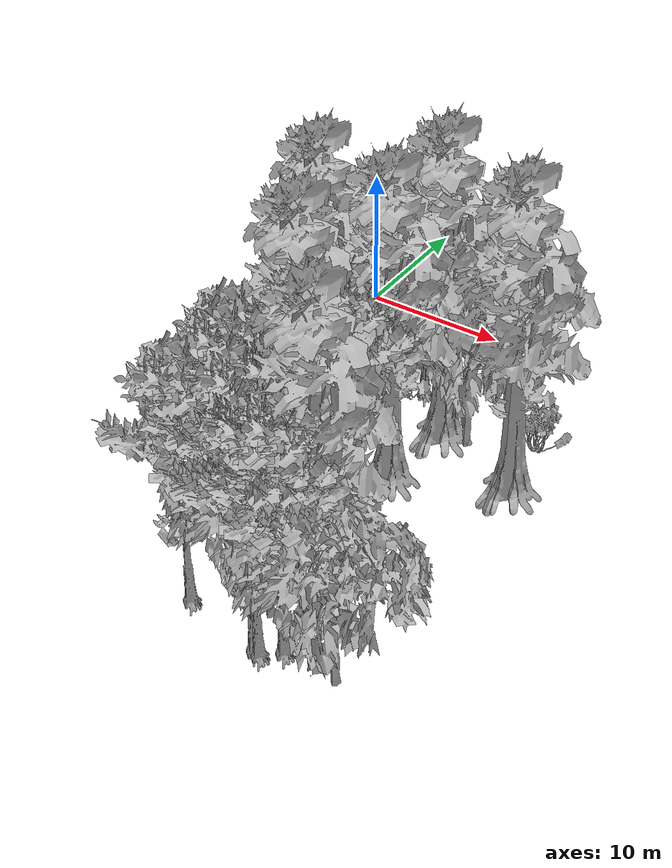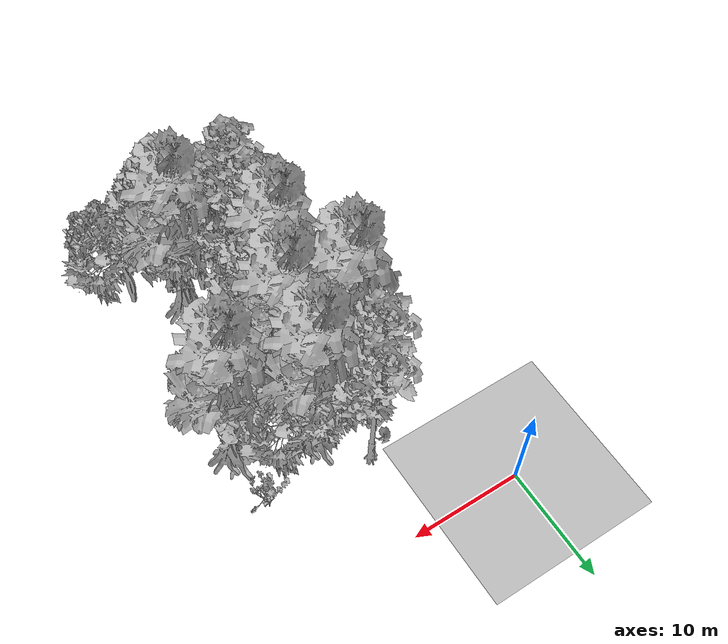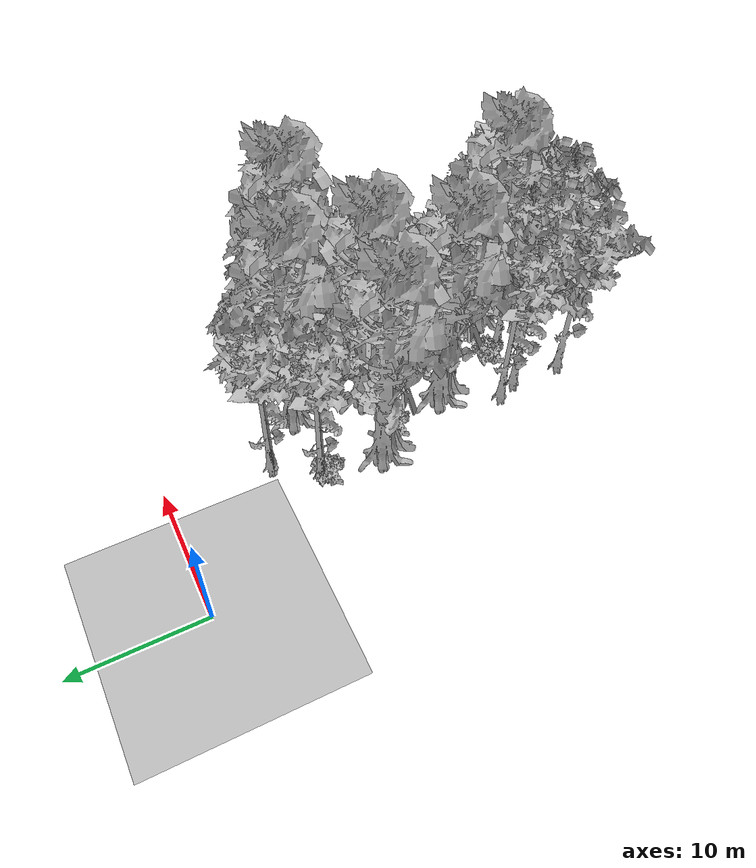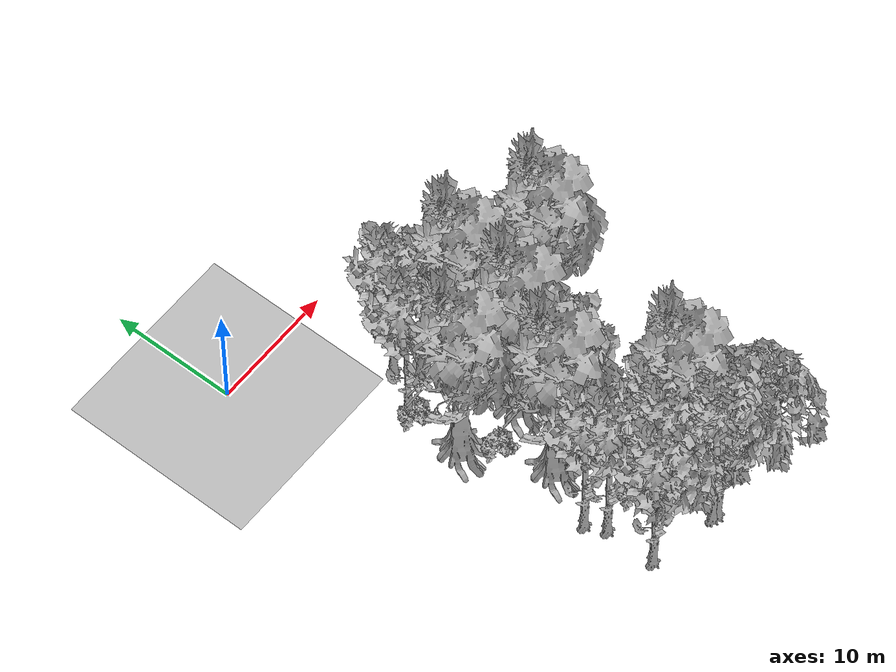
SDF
<sdf version="1.7">
 <world name="default">
  <model name="ground_plane">
   <static>1</static>
   <link name="link">
    <collision name="collision">
     <geometry><plane><normal>0 0 1</normal><size>70 70</size></plane></geometry>
     <surface><contact><ode><min_depth>0.01</min_depth><max_vel>0</max_vel></ode></contact></surface>
    </collision>
    <visual name="grass">
     <cast_shadows>0</cast_shadows>
     <geometry>
      <mesh>
       <scale>0.29000000000000004 0.29000000000000004 0.1</scale>
       <uri>file://grass_plane/meshes/grass_plane.dae</uri>
      </mesh>
     </geometry>
    </visual>
   </link>
  </model>
  <model name="Tree 6">
   <static>1</static>
   <pose>6.516080398578872 -15.849779528134338 0 1.57079 -0 0</pose>
   <link name="link">
    <collision name="collision">
     <geometry><mesh><scale>5 5 5</scale><uri>model://tree_4/meshes/tree_4.obj</uri></mesh></geometry>
    </collision>
    <visual name="visual">
     <geometry><mesh><scale>5 5 5</scale><uri>model://tree_4/meshes/tree_4.obj</uri></mesh></geometry>
    </visual>
   </link>
  </model>
  <model name="Tree 13">
   <static>1</static>
   <pose>18.613345052840224 -13.734592819964092 0 1.57079 -0 0</pose>
   <link name="link">
    <collision name="collision">
     <geometry><mesh><scale>5 5 5</scale><uri>model://tree_4/meshes/tree_4.obj</uri></mesh></geometry>
    </collision>
    <visual name="visual">
     <geometry><mesh><scale>5 5 5</scale><uri>model://tree_4/meshes/tree_4.obj</uri></mesh></geometry>
    </visual>
   </link>
  </model>
  <model name="Tree 21">
   <static>1</static>
   <pose>11.75320115348866 -16.734784934001564 0 1.57079 -0 0</pose>
   <link name="link">
    <collision name="collision">
     <geometry><mesh><scale>5 5 5</scale><uri>model://tree_4/meshes/tree_4.obj</uri></mesh></geometry>
    </collision>
    <visual name="visual">
     <geometry><mesh><scale>5 5 5</scale><uri>model://tree_4/meshes/tree_4.obj</uri></mesh></geometry>
    </visual>
   </link>
  </model>
  <model name="Tree 38">
   <static>1</static>
   <pose>13.919543447401544 -11.121491674539822 0 1.57079 -0 0</pose>
   <link name="link">
    <collision name="collision">
     <geometry><mesh><scale>5 5 5</scale><uri>model://tree_2/meshes/tree_2.obj</uri></mesh></geometry>
    </collision>
    <visual name="visual">
     <geometry><mesh><scale>5 5 5</scale><uri>model://tree_2/meshes/tree_2.obj</uri></mesh></geometry>
    </visual>
   </link>
  </model>
  <model name="Tree 43">
   <static>1</static>
   <pose>11.094405309211496 -30.09868720719511 0 1.57079 -0 0</pose>
   <link name="link">
    <collision name="collision">
     <geometry><mesh><scale>5 5 5</scale><uri>model://tree_9/meshes/tree_9.obj</uri></mesh></geometry>
    </collision>
    <visual name="visual">
     <geometry><mesh><scale>5 5 5</scale><uri>model://tree_9/meshes/tree_9.obj</uri></mesh></geometry>
    </visual>
   </link>
  </model>
  <model name="Tree 46">
   <static>1</static>
   <pose>14.748652098251696 -28.53026323483974 0 1.57079 -0 0</pose>
   <link name="link">
    <collision name="collision">
     <geometry><mesh><scale>5 5 5</scale><uri>model://tree_4/meshes/tree_4.obj</uri></mesh></geometry>
    </collision>
    <visual name="visual">
     <geometry><mesh><scale>5 5 5</scale><uri>model://tree_4/meshes/tree_4.obj</uri></mesh></geometry>
    </visual>
   </link>
  </model>
  <model name="Tree 73">
   <static>1</static>
   <pose>14.797706604875557 -32.02522684831839 0 1.57079 -0 0</pose>
   <link name="link">
    <collision name="collision">
     <geometry><mesh><scale>5 5 5</scale><uri>model://tree_9/meshes/tree_9.obj</uri></mesh></geometry>
    </collision>
    <visual name="visual">
     <geometry><mesh><scale>5 5 5</scale><uri>model://tree_9/meshes/tree_9.obj</uri></mesh></geometry>
    </visual>
   </link>
  </model>
  <model name="Tree 75">
   <static>1</static>
   <pose>9.31633322644317 -21.98857009264615 0 1.57079 -0 0</pose>
   <link name="link">
    <collision name="collision">
     <geometry><mesh><scale>5 5 5</scale><uri>model://tree_4/meshes/tree_4.obj</uri></mesh></geometry>
    </collision>
    <visual name="visual">
     <geometry><mesh><scale>5 5 5</scale><uri>model://tree_4/meshes/tree_4.obj</uri></mesh></geometry>
    </visual>
   </link>
  </model>
  <model name="Tree 83">
   <static>1</static>
   <pose>18.242586362476032 -32.345502292053254 0 1.57079 -0 0</pose>
   <link name="link">
    <collision name="collision">
     <geometry><mesh><scale>5 5 5</scale><uri>model://tree_2/meshes/tree_2.obj</uri></mesh></geometry>
    </collision>
    <visual name="visual">
     <geometry><mesh><scale>5 5 5</scale><uri>model://tree_2/meshes/tree_2.obj</uri></mesh></geometry>
    </visual>
   </link>
  </model>
  <model name="Tree 102">
   <static>1</static>
   <pose>8.073607944637565 -27.65518818909799 0 1.57079 -0 0</pose>
   <link name="link">
    <collision name="collision">
     <geometry><mesh><scale>5 5 5</scale><uri>model://tree_9/meshes/tree_9.obj</uri></mesh></geometry>
    </collision>
    <visual name="visual">
     <geometry><mesh><scale>5 5 5</scale><uri>model://tree_9/meshes/tree_9.obj</uri></mesh></geometry>
    </visual>
   </link>
  </model>
  <model name="Tree 116">
   <static>1</static>
   <pose>12.312174910938275 -11.333755657992711 0 1.57079 -0 0</pose>
   <link name="link">
    <collision name="collision">
     <geometry><mesh><scale>5 5 5</scale><uri>model://tree_4/meshes/tree_4.obj</uri></mesh></geometry>
    </collision>
    <visual name="visual">
     <geometry><mesh><scale>5 5 5</scale><uri>model://tree_4/meshes/tree_4.obj</uri></mesh></geometry>
    </visual>
   </link>
  </model>
  <model name="Tree 131">
   <static>1</static>
   <pose>8.04622105235454 -31.65103088711838 0 1.57079 -0 0</pose>
   <link name="link">
    <collision name="collision">
     <geometry><mesh><scale>5 5 5</scale><uri>model://tree_9/meshes/tree_9.obj</uri></mesh></geometry>
    </collision>
    <visual name="visual">
     <geometry><mesh><scale>5 5 5</scale><uri>model://tree_9/meshes/tree_9.obj</uri></mesh></geometry>
    </visual>
   </link>
  </model>
  <model name="Tree 138">
   <static>1</static>
   <pose>12.37979315244798 -30.186776260816075 0 1.57079 -0 0</pose>
   <link name="link">
    <collision name="collision">
     <geometry><mesh><scale>5 5 5</scale><uri>model://tree_2/meshes/tree_2.obj</uri></mesh></geometry>
    </collision>
    <visual name="visual">
     <geometry><mesh><scale>5 5 5</scale><uri>model://tree_2/meshes/tree_2.obj</uri></mesh></geometry>
    </visual>
   </link>
  </model>
  <model name="Tree 151">
   <static>1</static>
   <pose>11.9825903180841 -20.489643360568692 0 1.57079 -0 0</pose>
   <link name="link">
    <collision name="collision">
     <geometry><mesh><scale>5 5 5</scale><uri>model://tree_9/meshes/tree_9.obj</uri></mesh></geometry>
    </collision>
    <visual name="visual">
     <geometry><mesh><scale>5 5 5</scale><uri>model://tree_9/meshes/tree_9.obj</uri></mesh></geometry>
    </visual>
   </link>
  </model>
  <model name="Tree 179">
   <static>1</static>
   <pose>6.849941838956461 -10.894429777289819 0 1.57079 -0 0</pose>
   <link name="link">
    <collision name="collision">
     <geometry><mesh><scale>5 5 5</scale><uri>model://tree_9/meshes/tree_9.obj</uri></mesh></geometry>
    </collision>
    <visual name="visual">
     <geometry><mesh><scale>5 5 5</scale><uri>model://tree_9/meshes/tree_9.obj</uri></mesh></geometry>
    </visual>
   </link>
  </model>
  <model name="Tree 183">
   <static>1</static>
   <pose>13.352399016805073 -32.77176645445738 0 1.57079 -0 0</pose>
   <link name="link">
    <collision name="collision">
     <geometry><mesh><scale>5 5 5</scale><uri>model://tree_9/meshes/tree_9.obj</uri></mesh></geometry>
    </collision>
    <visual name="visual">
     <geometry><mesh><scale>5 5 5</scale><uri>model://tree_9/meshes/tree_9.obj</uri></mesh></geometry>
    </visual>
   </link>
  </model>
  <model name="Tree 198">
   <static>1</static>
   <pose>11.912093407259896 -28.428569701902752 0 1.57079 -0 0</pose>
   <link name="link">
    <collision name="collision">
     <geometry><mesh><scale>5 5 5</scale><uri>model://tree_9/meshes/tree_9.obj</uri></mesh></geometry>
    </collision>
    <visual name="visual">
     <geometry><mesh><scale>5 5 5</scale><uri>model://tree_9/meshes/tree_9.obj</uri></mesh></geometry>
    </visual>
   </link>
  </model>
  <model name="Tree 208">
   <static>1</static>
   <pose>13.762915619793695 -32.917284715132844 0 1.57079 -0 0</pose>
   <link name="link">
    <collision name="collision">
     <geometry><mesh><scale>5 5 5</scale><uri>model://tree_9/meshes/tree_9.obj</uri></mesh></geometry>
    </collision>
    <visual name="visual">
     <geometry><mesh><scale>5 5 5</scale><uri>model://tree_9/meshes/tree_9.obj</uri></mesh></geometry>
    </visual>
   </link>
  </model>
  <model name="Tree 212">
   <static>1</static>
   <pose>7.392087102007494 -26.135292800024068 0 1.57079 -0 0</pose>
   <link name="link">
    <collision name="collision">
     <geometry><mesh><scale>5 5 5</scale><uri>model://tree_9/meshes/tree_9.obj</uri></mesh></geometry>
    </collision>
    <visual name="visual">
     <geometry><mesh><scale>5 5 5</scale><uri>model://tree_9/meshes/tree_9.obj</uri></mesh></geometry>
    </visual>
   </link>
  </model>
  <model name="Tree 215">
   <static>1</static>
   <pose>9.682908365504026 -23.042122680460864 0 1.57079 -0 0</pose>
   <link name="link">
    <collision name="collision">
     <geometry><mesh><scale>5 5 5</scale><uri>model://tree_9/meshes/tree_9.obj</uri></mesh></geometry>
    </collision>
    <visual name="visual">
     <geometry><mesh><scale>5 5 5</scale><uri>model://tree_9/meshes/tree_9.obj</uri></mesh></geometry>
    </visual>
   </link>
  </model>
  <model name="Tree 225">
   <static>1</static>
   <pose>8.970206088182323 -7.846497788053199 0 1.57079 -0 0</pose>
   <link name="link">
    <collision name="collision">
     <geometry><mesh><scale>5 5 5</scale><uri>model://tree_9/meshes/tree_9.obj</uri></mesh></geometry>
    </collision>
    <visual name="visual">
     <geometry><mesh><scale>5 5 5</scale><uri>model://tree_9/meshes/tree_9.obj</uri></mesh></geometry>
    </visual>
   </link>
  </model>
  <model name="Bush 12">
   <static>1</static>
   <pose>8.50517459695348 -17.666753602049198 0 1.57079 -0 0</pose>
   <link name="link">
    <collision name="collision">
     <geometry><mesh><scale>2 2 2</scale><uri>model://bush_2/meshes/bush_2.obj</uri></mesh></geometry>
    </collision>
    <visual name="visual">
     <geometry><mesh><scale>5 5 5</scale><uri>model://bush_2/meshes/bush_2.obj</uri></mesh></geometry>
    </visual>
   </link>
  </model>
  <model name="Bush 40">
   <static>1</static>
   <pose>18.140789255036843 -9.238642609743323 0 1.57079 -0 0</pose>
   <link name="link">
    <collision name="collision">
     <geometry><mesh><scale>2 2 2</scale><uri>model://bush_4/meshes/bush_4.obj</uri></mesh></geometry>
    </collision>
    <visual name="visual">
     <geometry><mesh><scale>5 5 5</scale><uri>model://bush_4/meshes/bush_4.obj</uri></mesh></geometry>
    </visual>
   </link>
  </model>
  <model name="Bush 46">
   <static>1</static>
   <pose>11.401474468361037 -27.533018230999872 0 1.57079 -0 0</pose>
   <link name="link">
    <collision name="collision">
     <geometry><mesh><scale>2 2 2</scale><uri>model://bush_2/meshes/bush_2.obj</uri></mesh></geometry>
    </collision>
    <visual name="visual">
     <geometry><mesh><scale>5 5 5</scale><uri>model://bush_2/meshes/bush_2.obj</uri></mesh></geometry>
    </visual>
   </link>
  </model>
  <model name="Bush 60">
   <static>1</static>
   <pose>6.872641633457349 -11.517858354402247 0 1.57079 -0 0</pose>
   <link name="link">
    <collision name="collision">
     <geometry><mesh><scale>2 2 2</scale><uri>model://bush_2/meshes/bush_2.obj</uri></mesh></geometry>
    </collision>
    <visual name="visual">
     <geometry><mesh><scale>5 5 5</scale><uri>model://bush_2/meshes/bush_2.obj</uri></mesh></geometry>
    </visual>
   </link>
  </model>
 </world>
</sdf>
